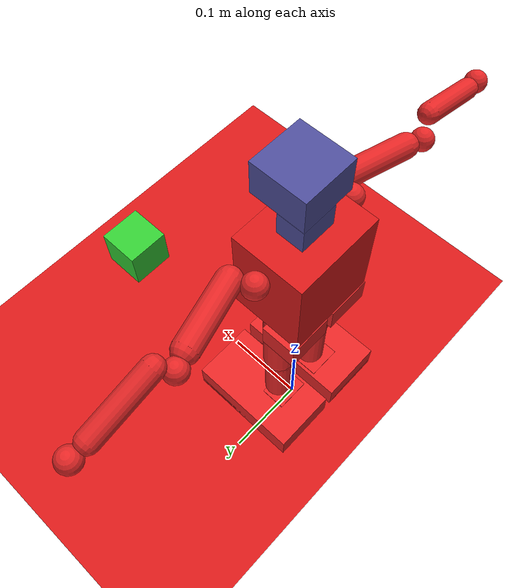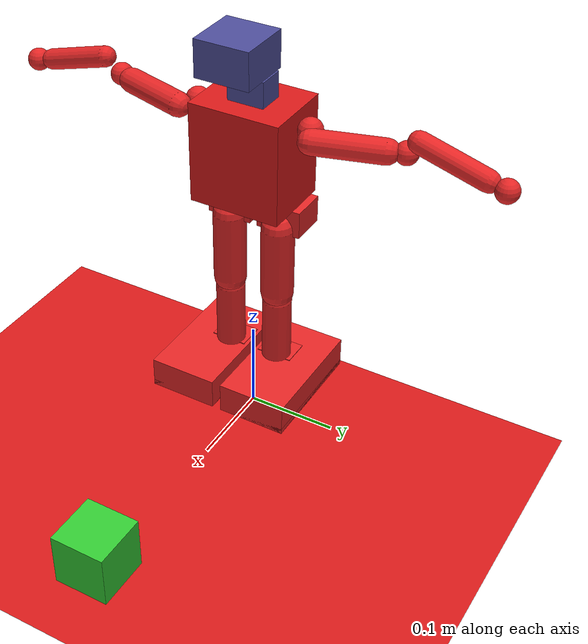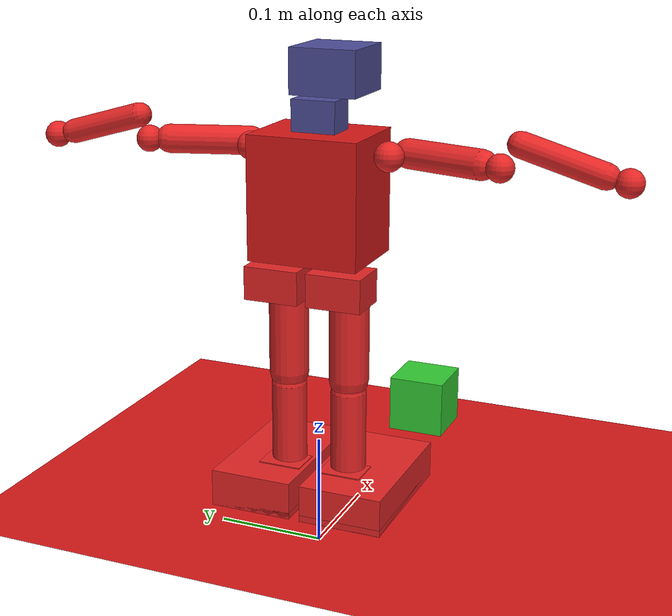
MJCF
<mujoco model="ainex_grasp_scene">
  <!-- Extends ainex_primitives.xml with graspable object and target site for manipulation tasks.
       Used by grasp.py, carry.py, and place.py environments. -->

  <include file="ainex_primitives.xml"/>

  <default>
    <default class="graspable">
      <geom mass="0.05" type="box" size="0.03 0.03 0.03"
            contype="1" conaffinity="1"
            friction="1.0 0.02 0.01"
            solimp="0.95 0.99 0.001" solref="0.004 1"
            rgba="0.2 0.8 0.2 1"/>
    </default>
    <default class="target_zone">
      <site type="cylinder" size="0.08 0.001" rgba="0.2 0.2 0.9 0.4" group="3"/>
    </default>
  </default>

  <worldbody>
    <!-- Graspable object: small cube, 0.05kg, 3cm per side -->
    <body name="grasp_object" pos="0.3 0 0.03">
      <freejoint name="object_joint"/>
      <inertial pos="0 0 0" mass="0.05"
                fullinertia="3e-05 3e-05 3e-05 0 0 0"/>
      <geom name="object_geom" class="graspable"/>
      <site name="object_site" pos="0 0 0" size="0.005" group="5"/>
    </body>

    <!-- Target placement zone (visual only, no collision) -->
    <site name="target_zone" class="target_zone" pos="1.0 0 0.001"/>
  </worldbody>

  <!-- Contact: object must collide with floor and gripper geoms -->
  <contact>
    <pair geom1="object_geom" geom2="floor" condim="4"
          friction="0.8 0.8 0.005 0.0001 0.0001"/>
    <pair geom1="object_geom" geom2="r_foot1" condim="4"/>
    <pair geom1="object_geom" geom2="r_foot2" condim="4"/>
    <pair geom1="object_geom" geom2="l_foot1" condim="4"/>
    <pair geom1="object_geom" geom2="l_foot2" condim="4"/>
  </contact>

  <!-- Weld equality constraint for place.py: disabled by default, activated
       when the object should start attached to the gripper. -->
  <equality>
    <weld name="object_weld" body1="r_gripper_link" body2="grasp_object"
          relpose="0 -0.02 -0.01 1 0 0 0" active="false"/>
  </equality>

  <!-- Sensor: contact between gripper geoms and the graspable object -->
  <sensor>
    <touch name="r_gripper_object_touch" site="object_site"/>
  </sensor>

</mujoco>

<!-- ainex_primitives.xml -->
<mujoco model="ainex_primitives">
  <!-- Pure primitive geometry version for fast MJX training (no meshes) -->
  <compiler angle="radian" autolimits="true"/>

  <option timestep="0.004" gravity="0 0 -9.81" iterations="1" ls_iterations="5">
    <flag eulerdamp="disable"/>
  </option>

  <default>
    <joint limited="true" damping="5.0" armature="0.04" frictionloss="0.1"
           range="-1.57 1.57"/>
    <geom contype="0" conaffinity="0" friction="0.6" rgba="0.85 0.1 0.1 1"/>
    <site group="5" type="sphere"/>
    <position kp="200" ctrlrange="-3.14159 3.14159" forcerange="-500 500"/>
    <default class="foot">
      <geom mass="0" type="box" friction="1.0 0.02 0.01" contype="1" conaffinity="1"
            solimp="0.95 0.99 0.001" solref="0.004 1"/>
    </default>
  </default>

  <asset>
    <texture type="skybox" builtin="gradient" rgb1="0.3 0.5 0.7" rgb2="0 0 0" width="512" height="512"/>
    <texture type="2d" name="ground" builtin="checker" rgb1="0.2 0.3 0.4" rgb2="0.25 0.35 0.45"
             width="512" height="512" mark="edge" markrgb="0.3 0.4 0.5"/>
    <material name="ground" texture="ground" texrepeat="8 8" texuniform="true" reflectance="0.2"/>
  </asset>

  <worldbody>
    <light name="top" pos="0 0 3" dir="0 0 -1" diffuse="0.6 0.6 0.6" specular="0.3 0.3 0.3"/>
    <light name="spot" mode="targetbodycom" target="body_link" pos="3 -1 2" diffuse="0.8 0.8 0.8"/>
    <geom name="floor" type="plane" size="0 0 0.01" material="ground" contype="1" conaffinity="0"/>

    <body name="base_link" pos="0 0 0.28">
      <freejoint name="root"/>

      <body name="body_link">
        <inertial pos="0.004 0 0.050" mass="0.743"
                  fullinertia="0.00122 0.00104 0.00109 0 -5.3e-05 0"/>
        <geom name="torso" type="box" size="0.04 0.05 0.055" pos="0 0 0.05" rgba="0.85 0.1 0.1 1"
              contype="1" conaffinity="1" friction="0.7 0.1 0.001"
              solimp="0.9 0.95 0.001" solref="0.005 1"/>
        <site name="imu" pos="0 0 0.05" size="0.005"/>

        <!-- RIGHT LEG -->
        <body name="r_hip_yaw_link" pos="0 -0.029 0">
          <joint name="r_hip_yaw" axis="0 0 -1"/>
          <inertial pos="0 0.001 -0.001" mass="0.032"
                    fullinertia="1.76e-05 2.27e-05 9.05e-06 0 0 0"/>
          <geom type="sphere" size="0.015" contype="1" conaffinity="1" rgba="0.9 0.15 0.15 1"/>

          <body name="r_hip_roll_link" pos="-0.01955 0 -0.0255">
            <joint name="r_hip_roll" axis="-1 0 0"/>
            <inertial pos="0.001 -0.001 -0.013" mass="0.120"
                      fullinertia="2.9e-05 7.3e-05 6.1e-05 0 0 0"/>
            <geom type="box" size="0.02 0.025 0.015" contype="1" conaffinity="1" rgba="0.9 0.15 0.15 1"/>

            <body name="r_hip_pitch_link" pos="0.01904 -0.02 0">
              <joint name="r_hip_pitch" axis="0 -1 0"/>
              <inertial pos="0.014 0.019 -0.073" mass="0.1065"
                        fullinertia="0.00011 0.00011 4.2e-05 0 -8e-06 0"/>
              <geom type="capsule" size="0.018" fromto="0 0.02 -0.01 0 0.02 -0.09" contype="1" conaffinity="1" rgba="0.9 0.15 0.15 1"/>

              <body name="r_knee_link" pos="-0.000372 0.00005 -0.09689">
                <joint name="r_knee" axis="0 -1 0"/>
                <inertial pos="0.003 0.020 -0.043" mass="0.045"
                          fullinertia="6.7e-05 5.5e-05 2.1e-05 0 0 0"/>
                <geom type="capsule" size="0.016" fromto="0 0.02 -0.005 0 0.02 -0.085" contype="1" conaffinity="1" rgba="0.9 0.15 0.15 1"/>

                <body name="r_ank_pitch_link" pos="0.001037 0 -0.08908">
                  <joint name="r_ank_pitch" axis="0 1 0" range="-1.0 1.0"/>
                  <inertial pos="-0.018 0.020 0.013" mass="0.120"
                            fullinertia="2.9e-05 7.4e-05 6.1e-05 0 0 0"/>
                  <geom type="box" size="0.015 0.02 0.012" pos="-0.01 0.02 0" contype="1" conaffinity="1" rgba="0.9 0.15 0.15 1"/>

                  <body name="r_ank_roll_link" pos="-0.01904 0.02 0">
                    <joint name="r_ank_roll" axis="1 0 0" range="-0.4 0.4"/>
                    <inertial pos="0.029 -0.013 -0.018" mass="0.0675"
                              fullinertia="4.2e-05 9.2e-05 1.3e-04 0 0 0"/>
                    <site name="right_foot" pos="0.02 0 -0.02" size="0.005"/>
                    <!-- Foot: STL bounds 135x76x34mm -->
                    <geom name="r_foot1" class="foot" size="0.068 0.038 0.017" pos="0.030 -0.014 -0.006" rgba="0.9 0.15 0.15 1"/>
                    <geom name="r_foot2" class="foot" size="0.068 0.038 0.003" pos="0.030 -0.014 -0.020" rgba="0.9 0.15 0.15 1"/>
                  </body>
                </body>
              </body>
            </body>
          </body>
        </body>

        <!-- LEFT LEG -->
        <body name="l_hip_yaw_link" pos="0 0.029 0">
          <joint name="l_hip_yaw" axis="0 0 -1"/>
          <inertial pos="0 -0.001 -0.001" mass="0.032"
                    fullinertia="1.76e-05 2.27e-05 9.05e-06 0 0 0"/>
          <geom type="sphere" size="0.015" contype="1" conaffinity="1" rgba="0.9 0.15 0.15 1"/>

          <body name="l_hip_roll_link" pos="-0.01955 0 -0.0255">
            <joint name="l_hip_roll" axis="-1 0 0"/>
            <inertial pos="0.001 0.001 -0.013" mass="0.120"
                      fullinertia="2.9e-05 7.3e-05 6.1e-05 0 0 0"/>
            <geom type="box" size="0.02 0.025 0.015" contype="1" conaffinity="1" rgba="0.9 0.15 0.15 1"/>

            <body name="l_hip_pitch_link" pos="0.019037 0.02 0">
              <joint name="l_hip_pitch" axis="0 1 0"/>
              <inertial pos="0.014 -0.019 -0.073" mass="0.1065"
                        fullinertia="0.00011 0.00011 4.2e-05 0 -8e-06 0"/>
              <geom type="capsule" size="0.018" fromto="0 -0.02 -0.01 0 -0.02 -0.09" contype="1" conaffinity="1" rgba="0.9 0.15 0.15 1"/>

              <body name="l_knee_link" pos="-0.00037204 -0.00005 -0.096886">
                <joint name="l_knee" axis="0 1 0"/>
                <inertial pos="0.003 -0.020 -0.043" mass="0.045"
                          fullinertia="6.7e-05 5.5e-05 2.1e-05 0 0 0"/>
                <geom type="capsule" size="0.016" fromto="0 -0.02 -0.005 0 -0.02 -0.085" contype="1" conaffinity="1" rgba="0.9 0.15 0.15 1"/>

                <body name="l_ank_pitch_link" pos="0.001037 0 -0.089077">
                  <joint name="l_ank_pitch" axis="0 -1 0" range="-1.0 1.0"/>
                  <inertial pos="-0.018 -0.020 0.013" mass="0.120"
                            fullinertia="2.9e-05 7.4e-05 6.1e-05 0 0 0"/>
                  <geom type="box" size="0.015 0.02 0.012" pos="-0.01 -0.02 0" contype="1" conaffinity="1" rgba="0.9 0.15 0.15 1"/>

                  <body name="l_ank_roll_link" pos="-0.019037 -0.02 0">
                    <joint name="l_ank_roll" axis="1 0 0" range="-0.4 0.4"/>
                    <inertial pos="0.029 0.013 -0.018" mass="0.0675"
                              fullinertia="4.2e-05 9.2e-05 1.3e-04 0 0 0"/>
                    <site name="left_foot" pos="0.02 0 -0.02" size="0.005"/>
                    <!-- Foot: STL bounds 135x76x34mm (mirrored Y) -->
                    <geom name="l_foot1" class="foot" size="0.068 0.038 0.017" pos="0.030 0.014 -0.006" rgba="0.9 0.15 0.15 1"/>
                    <geom name="l_foot2" class="foot" size="0.068 0.038 0.003" pos="0.030 0.014 -0.020" rgba="0.9 0.15 0.15 1"/>
                  </body>
                </body>
              </body>
            </body>
          </body>
        </body>

        <!-- HEAD -->
        <body name="head_pan_link" pos="-0.0041 0 0.1078">
          <joint name="head_pan" axis="0 0 -1"/>
          <inertial pos="0.005 0 0.014" mass="0.00767"
                    fullinertia="2.1e-06 9.9e-07 1.8e-06 0 0 0"/>
          <geom type="box" size="0.015 0.02 0.015" pos="0.005 0 0.01" contype="1" conaffinity="1" rgba="0.3 0.3 0.6 1"/>
          <body name="head_tilt_link" pos="0.00905 -0.01857 0.02816">
            <joint name="head_tilt" axis="0 -1 0"/>
            <inertial pos="0.011 0.019 0.022" mass="0.02622"
                      fullinertia="6.2e-06 6.3e-06 6.9e-06 0 0 0"/>
            <geom type="box" size="0.03 0.03 0.02" pos="0.01 0.01 0.02" contype="1" conaffinity="1" rgba="0.3 0.3 0.6 1"/>
            <site name="camera_eye" pos="0.03 0 0.01" size="0.005"/>
            <camera name="head_cam" pos="0.03 0 0.01" fovy="49.1" mode="fixed"/>
          </body>
        </body>

        <!-- RIGHT ARM -->
        <body name="r_sho_pitch_link" pos="0 -0.05249 0.08745">
          <joint name="r_sho_pitch" axis="0 -1 0" damping="3.0" armature="0.08" frictionloss="0.2"/>
          <inertial pos="0 -0.011 0" mass="0.0128"
                    fullinertia="2.1e-06 3.9e-06 5e-06 0 0 0"/>
          <geom type="sphere" size="0.013" pos="0 -0.011 0" contype="1" conaffinity="1" rgba="0.9 0.15 0.15 1"/>
          <body name="r_sho_roll_link" pos="0.020003 -0.02151 0">
            <joint name="r_sho_roll" axis="1 0 0" damping="3.0" armature="0.08" frictionloss="0.2"/>
            <inertial pos="-0.021 -0.028 0" mass="0.121"
                      fullinertia="7.3e-05 2.5e-05 7.5e-05 9e-06 0 0"/>
            <geom type="capsule" size="0.013" fromto="0 0 0 -0.02 -0.07 0" contype="1" conaffinity="1" rgba="0.9 0.15 0.15 1"/>
            <body name="r_el_pitch_link" pos="-0.020003 -0.07411 0">
              <joint name="r_el_pitch" axis="0 -1 0" damping="3.0" armature="0.08" frictionloss="0.2"/>
              <inertial pos="-0.007 -0.013 0" mass="0.045"
                        fullinertia="8e-06 8.3e-06 1.1e-05 0 0 0"/>
              <geom type="sphere" size="0.012" pos="-0.007 -0.013 0" contype="1" conaffinity="1" rgba="0.9 0.15 0.15 1"/>
              <body name="r_el_yaw_link" pos="0.000398 -0.01702 0.01907">
                <joint name="r_el_yaw" axis="0 0 1" damping="3.0" armature="0.08" frictionloss="0.2"/>
                <inertial pos="0 -0.057 -0.014" mass="0.102"
                          fullinertia="1.4e-04 3.1e-05 1.4e-04 0 0 -1.3e-05"/>
                <geom type="capsule" size="0.011" fromto="0 -0.01 0 0 -0.08 -0.02" contype="1" conaffinity="1" rgba="0.9 0.15 0.15 1"/>
                <body name="r_gripper_link" pos="0.01989 -0.08924 -0.01907">
                  <joint name="r_gripper" axis="1 0 0" damping="3.0" armature="0.08" frictionloss="0.2"/>
                  <inertial pos="-0.019 -0.009 -0.005" mass="0.0135"
                            fullinertia="3.3e-06 4.5e-06 6e-06 0 0 0"/>
                  <geom type="sphere" size="0.012" pos="-0.019 -0.009 -0.005" contype="1" conaffinity="1" rgba="0.9 0.15 0.15 1"/>
                </body>
              </body>
            </body>
          </body>
        </body>

        <!-- LEFT ARM -->
        <body name="l_sho_pitch_link" pos="0 0.052491 0.087448">
          <joint name="l_sho_pitch" axis="0 -1 0" damping="3.0" armature="0.08" frictionloss="0.2"/>
          <inertial pos="0 0.011 0" mass="0.0128"
                    fullinertia="2.1e-06 3.9e-06 5e-06 0 0 0"/>
          <geom type="sphere" size="0.013" pos="0 0.011 0" contype="1" conaffinity="1" rgba="0.9 0.15 0.15 1"/>
          <body name="l_sho_roll_link" pos="0.020003 0.021507 0">
            <joint name="l_sho_roll" axis="1 0 0" damping="3.0" armature="0.08" frictionloss="0.2"/>
            <inertial pos="-0.021 0.028 0" mass="0.121"
                      fullinertia="7.3e-05 2.5e-05 7.5e-05 -9e-06 0 0"/>
            <geom type="capsule" size="0.013" fromto="0 0 0 -0.02 0.07 0" contype="1" conaffinity="1" rgba="0.9 0.15 0.15 1"/>
            <body name="l_el_pitch_link" pos="-0.020003 0.074109 0">
              <joint name="l_el_pitch" axis="0 -1 0" damping="3.0" armature="0.08" frictionloss="0.2"/>
              <inertial pos="-0.007 0.013 0" mass="0.045"
                        fullinertia="8e-06 8.3e-06 1.1e-05 0 0 0"/>
              <geom type="sphere" size="0.012" pos="-0.007 0.013 0" contype="1" conaffinity="1" rgba="0.9 0.15 0.15 1"/>
              <body name="l_el_yaw_link" pos="0.000395 0.017019 0.019072">
                <joint name="l_el_yaw" axis="0 0 1" damping="3.0" armature="0.08" frictionloss="0.2"/>
                <inertial pos="0 0.057 -0.014" mass="0.102"
                          fullinertia="1.4e-04 3.1e-05 1.4e-04 0 0 1.3e-05"/>
                <geom type="capsule" size="0.011" fromto="0 0.01 0 0 0.08 -0.02" contype="1" conaffinity="1" rgba="0.9 0.15 0.15 1"/>
                <body name="l_gripper_link" pos="0.019893 0.089232 -0.019072">
                  <joint name="l_gripper" axis="1 0 0" damping="3.0" armature="0.08" frictionloss="0.2"/>
                  <inertial pos="-0.019 0.009 -0.005" mass="0.0135"
                            fullinertia="3.3e-06 4.5e-06 6e-06 0 0 0"/>
                  <geom type="sphere" size="0.012" pos="-0.019 0.009 -0.005" contype="1" conaffinity="1" rgba="0.9 0.15 0.15 1"/>
                </body>
              </body>
            </body>
          </body>
        </body>

      </body><!-- /body_link -->
    </body><!-- /base_link -->
  </worldbody>

  <!-- Exclude adjacent-link self-collision -->
  <contact>
    <exclude body1="body_link" body2="r_hip_yaw_link"/>
    <exclude body1="body_link" body2="l_hip_yaw_link"/>
    <exclude body1="body_link" body2="head_pan_link"/>
    <exclude body1="body_link" body2="r_sho_pitch_link"/>
    <exclude body1="body_link" body2="l_sho_pitch_link"/>
    <exclude body1="r_hip_yaw_link" body2="r_hip_roll_link"/>
    <exclude body1="r_hip_roll_link" body2="r_hip_pitch_link"/>
    <exclude body1="r_hip_pitch_link" body2="r_knee_link"/>
    <exclude body1="r_knee_link" body2="r_ank_pitch_link"/>
    <exclude body1="r_ank_pitch_link" body2="r_ank_roll_link"/>
    <exclude body1="l_hip_yaw_link" body2="l_hip_roll_link"/>
    <exclude body1="l_hip_roll_link" body2="l_hip_pitch_link"/>
    <exclude body1="l_hip_pitch_link" body2="l_knee_link"/>
    <exclude body1="l_knee_link" body2="l_ank_pitch_link"/>
    <exclude body1="l_ank_pitch_link" body2="l_ank_roll_link"/>
    <exclude body1="head_pan_link" body2="head_tilt_link"/>
    <exclude body1="r_sho_pitch_link" body2="r_sho_roll_link"/>
    <exclude body1="r_sho_roll_link" body2="r_el_pitch_link"/>
    <exclude body1="r_el_pitch_link" body2="r_el_yaw_link"/>
    <exclude body1="r_el_yaw_link" body2="r_gripper_link"/>
    <exclude body1="l_sho_pitch_link" body2="l_sho_roll_link"/>
    <exclude body1="l_sho_roll_link" body2="l_el_pitch_link"/>
    <exclude body1="l_el_pitch_link" body2="l_el_yaw_link"/>
    <exclude body1="l_el_yaw_link" body2="l_gripper_link"/>
  </contact>

  <actuator>
    <position name="r_hip_yaw_act"   joint="r_hip_yaw"   kp="200"/>
    <position name="r_hip_roll_act"  joint="r_hip_roll"  kp="200"/>
    <position name="r_hip_pitch_act" joint="r_hip_pitch" kp="200"/>
    <position name="r_knee_act"      joint="r_knee"      kp="200"/>
    <position name="r_ank_pitch_act" joint="r_ank_pitch" kp="200"/>
    <position name="r_ank_roll_act"  joint="r_ank_roll"  kp="200"/>
    <position name="l_hip_yaw_act"   joint="l_hip_yaw"   kp="200"/>
    <position name="l_hip_roll_act"  joint="l_hip_roll"  kp="200"/>
    <position name="l_hip_pitch_act" joint="l_hip_pitch" kp="200"/>
    <position name="l_knee_act"      joint="l_knee"      kp="200"/>
    <position name="l_ank_pitch_act" joint="l_ank_pitch" kp="200"/>
    <position name="l_ank_roll_act"  joint="l_ank_roll"  kp="200"/>
    <position name="head_pan_act"  joint="head_pan"  kp="50"/>
    <position name="head_tilt_act" joint="head_tilt" kp="50"/>
    <position name="r_sho_pitch_act" joint="r_sho_pitch" kp="50"/>
    <position name="r_sho_roll_act"  joint="r_sho_roll"  kp="50"/>
    <position name="r_el_pitch_act"  joint="r_el_pitch"  kp="50"/>
    <position name="r_el_yaw_act"    joint="r_el_yaw"    kp="50"/>
    <position name="r_gripper_act"   joint="r_gripper"   kp="50"/>
    <position name="l_sho_pitch_act" joint="l_sho_pitch" kp="50"/>
    <position name="l_sho_roll_act"  joint="l_sho_roll"  kp="50"/>
    <position name="l_el_pitch_act"  joint="l_el_pitch"  kp="50"/>
    <position name="l_el_yaw_act"    joint="l_el_yaw"    kp="50"/>
    <position name="l_gripper_act"   joint="l_gripper"   kp="50"/>
  </actuator>

  <sensor>
    <accelerometer name="accelerometer" site="imu"/>
    <gyro name="gyro" site="imu"/>
    <framezaxis name="upvector" objtype="site" objname="imu"/>
    <framelinvel name="global_linvel" objtype="site" objname="imu"/>
    <frameangvel name="global_angvel" objtype="site" objname="imu"/>
    <velocimeter name="local_linvel" site="imu"/>
    <framequat name="body_quat" objtype="body" objname="body_link"/>
    <subtreecom name="com" body="base_link"/>
    <framelinvel name="left_foot_global_linvel" objtype="site" objname="left_foot"/>
    <framelinvel name="right_foot_global_linvel" objtype="site" objname="right_foot"/>
    <contact name="l_foot1_floor_found" geom1="l_foot1" geom2="floor" reduce="mindist" num="1" data="found"/>
    <contact name="l_foot2_floor_found" geom1="l_foot2" geom2="floor" reduce="mindist" num="1" data="found"/>
    <contact name="r_foot1_floor_found" geom1="r_foot1" geom2="floor" reduce="mindist" num="1" data="found"/>
    <contact name="r_foot2_floor_found" geom1="r_foot2" geom2="floor" reduce="mindist" num="1" data="found"/>
  </sensor>

  <keyframe>
    <key name="stand"
         qpos="0 0 0.24 1 0 0 0
               0 0 0 0 0 0
               0 0 0 0 0 0
               0 0
               0 1.403 0 1.226 0
               0 -1.403 0 -1.226 0"/>
    <key name="stand_bent_knees"
         qpos="0 0 0.196 1 0 0 0
               0 -0.016 0.828 -1.192 -0.625 -0.016
               0  0.016 -0.828 1.192 0.625 0.016
               0 0
               0 -1.293 0.10 1.926 0
               0 1.293 -0.10 -1.926 0"/>
    <!-- Fallen poses for getup training -->
    <key name="face_down"
         qpos="0 0 0.08 0 0 1 0
               0 0 0 0 0 0  0 0 0 0 0 0  0 0
               0 -1.293 0.10 1.926 0  0 1.293 -0.10 -1.926 0"/>
    <key name="face_up"
         qpos="0 0 0.08 0 1 0 0
               0 0 0 0 0 0  0 0 0 0 0 0  0 0
               0 -1.293 0.10 1.926 0  0 1.293 -0.10 -1.926 0"/>
    <key name="side_right"
         qpos="0 0 0.07 0.707 0.707 0 0
               0 0 0 0 0 0  0 0 0 0 0 0  0 0
               0 -1.293 0.10 1.926 0  0 1.293 -0.10 -1.926 0"/>
    <key name="side_left"
         qpos="0 0 0.07 0.707 -0.707 0 0
               0 0 0 0 0 0  0 0 0 0 0 0  0 0
               0 -1.293 0.10 1.926 0  0 1.293 -0.10 -1.926 0"/>
  </keyframe>

</mujoco>
